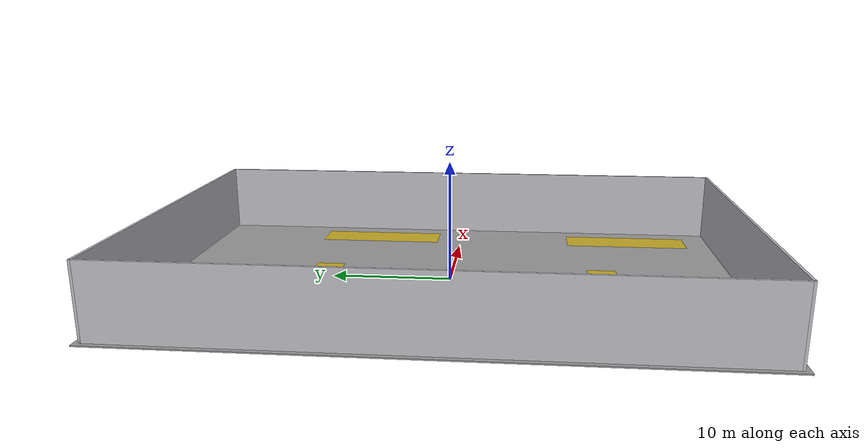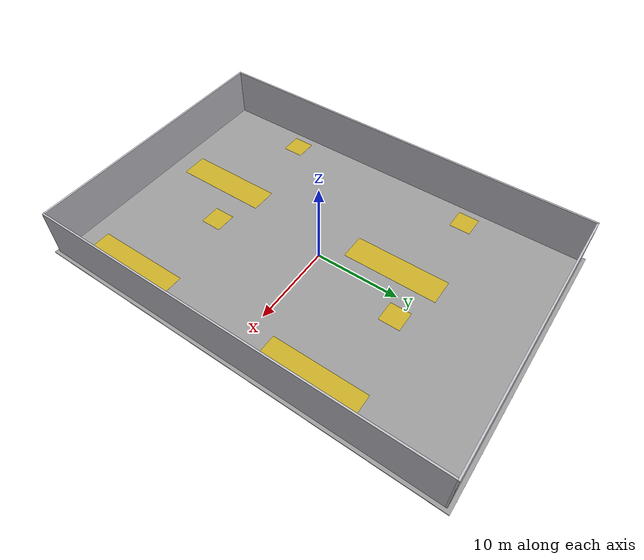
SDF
<sdf version="1.6">
 <world name="default">
  <gravity>0 0 -9.8</gravity>
  <physics default="0" name="default_physics" type="ode">
   <max_step_size>0.01</max_step_size>
   <real_time_factor>1</real_time_factor>
   <real_time_update_rate>100</real_time_update_rate>
  </physics>
  <model name="warehouse_double_ground">
   <static>true</static>
   <link name="ground_link">
    <collision name="ground_collision">
     <geometry><box><size>33 49 0.1</size></box></geometry>
     <surface><friction><ode><mu>0.8</mu><mu2>0.8</mu2></ode></friction></surface>
    </collision>
    <visual name="ground_visual">
     <geometry><box><size>33 49 0.1</size></box></geometry>
     <material><ambient>0.5 0.5 0.5 1</ambient><diffuse>0.6 0.6 0.6 1</diffuse></material>
    </visual>
    <pose>0 0 -0.05 0 0 0</pose>
   </link>
  </model>
  <model name="warehouse_double_wall_south">
   <static>true</static>
   <link name="wall_link">
    <collision name="c"><geometry><box><size>32.2 0.2 6</size></box></geometry></collision>
    <visual name="v">
     <geometry><box><size>32.2 0.2 6</size></box></geometry>
     <material><ambient>0.7 0.7 0.72 1</ambient><diffuse>0.75 0.75 0.78 1</diffuse></material>
    </visual>
   </link>
   <pose>0 -24 3 0 0 0</pose>
  </model>
  <model name="warehouse_double_wall_north">
   <static>true</static>
   <link name="wall_link">
    <collision name="c"><geometry><box><size>32.2 0.2 6</size></box></geometry></collision>
    <visual name="v">
     <geometry><box><size>32.2 0.2 6</size></box></geometry>
     <material><ambient>0.7 0.7 0.72 1</ambient><diffuse>0.75 0.75 0.78 1</diffuse></material>
    </visual>
   </link>
   <pose>0 24 3 0 0 0</pose>
  </model>
  <model name="warehouse_double_wall_west">
   <static>true</static>
   <link name="wall_link">
    <collision name="c"><geometry><box><size>0.2 48.2 6</size></box></geometry></collision>
    <visual name="v">
     <geometry><box><size>0.2 48.2 6</size></box></geometry>
     <material><ambient>0.7 0.7 0.72 1</ambient><diffuse>0.75 0.75 0.78 1</diffuse></material>
    </visual>
   </link>
   <pose>-16 0 3 0 0 0</pose>
  </model>
  <model name="warehouse_double_wall_east">
   <static>true</static>
   <link name="wall_link">
    <collision name="c"><geometry><box><size>0.2 48.2 6</size></box></geometry></collision>
    <visual name="v">
     <geometry><box><size>0.2 48.2 6</size></box></geometry>
     <material><ambient>0.7 0.7 0.72 1</ambient><diffuse>0.75 0.75 0.78 1</diffuse></material>
    </visual>
   </link>
   <pose>16 0 3 0 0 0</pose>
  </model>
  <model name="keepout_zone_shelfF_Q1">
   <static>true</static>
   <link name="l">
    <visual name="v">
     <geometry><box><size>2.5 2.5 0.02</size></box></geometry>
     <material><ambient>0.9 0.75 0 0.7</ambient><diffuse>0.9 0.75 0 0.7</diffuse></material>
    </visual>
   </link>
   <pose>-13.795143 -12.956635 0.01 0 0 0</pose>
  </model>
  <model name="keepout_zone_shelfF_Q2">
   <static>true</static>
   <link name="l">
    <visual name="v">
     <geometry><box><size>2.5 2.5 0.02</size></box></geometry>
     <material><ambient>0.9 0.75 0 0.7</ambient><diffuse>0.9 0.75 0 0.7</diffuse></material>
    </visual>
   </link>
   <pose>-13.795143 11.043365 0.01 0 0 0</pose>
  </model>
  <model name="keepout_zone_shelfF_Q3">
   <static>true</static>
   <link name="l">
    <visual name="v">
     <geometry><box><size>2.5 2.5 0.02</size></box></geometry>
     <material><ambient>0.9 0.75 0 0.7</ambient><diffuse>0.9 0.75 0 0.7</diffuse></material>
    </visual>
   </link>
   <pose>2.204857 -12.956635 0.01 0 0 0</pose>
  </model>
  <model name="keepout_zone_shelfF_Q4">
   <static>true</static>
   <link name="l">
    <visual name="v">
     <geometry><box><size>2.5 2.5 0.02</size></box></geometry>
     <material><ambient>0.9 0.75 0 0.7</ambient><diffuse>0.9 0.75 0 0.7</diffuse></material>
    </visual>
   </link>
   <pose>2.204857 11.043365 0.01 0 0 0</pose>
  </model>
  <model name="keepout_zone_shelfED_Q1">
   <static>true</static>
   <link name="l">
    <visual name="v">
     <geometry><box><size>3.1 11.3 0.02</size></box></geometry>
     <material><ambient>0.9 0.75 0 0.7</ambient><diffuse>0.9 0.75 0 0.7</diffuse></material>
    </visual>
   </link>
   <pose>-3.25 -16.05 0.01 0 0 0</pose>
  </model>
  <model name="keepout_zone_shelfED_Q2">
   <static>true</static>
   <link name="l">
    <visual name="v">
     <geometry><box><size>3.1 11.3 0.02</size></box></geometry>
     <material><ambient>0.9 0.75 0 0.7</ambient><diffuse>0.9 0.75 0 0.7</diffuse></material>
    </visual>
   </link>
   <pose>-3.25 7.95 0.01 0 0 0</pose>
  </model>
  <model name="keepout_zone_shelfED_Q3">
   <static>true</static>
   <link name="l">
    <visual name="v">
     <geometry><box><size>3.1 11.3 0.02</size></box></geometry>
     <material><ambient>0.9 0.75 0 0.7</ambient><diffuse>0.9 0.75 0 0.7</diffuse></material>
    </visual>
   </link>
   <pose>12.75 -16.05 0.01 0 0 0</pose>
  </model>
  <model name="keepout_zone_shelfED_Q4">
   <static>true</static>
   <link name="l">
    <visual name="v">
     <geometry><box><size>3.1 11.3 0.02</size></box></geometry>
     <material><ambient>0.9 0.75 0 0.7</ambient><diffuse>0.9 0.75 0 0.7</diffuse></material>
    </visual>
   </link>
   <pose>12.75 7.95 0.01 0 0 0</pose>
  </model>
  <light name="Warehouse_CeilingLight_Q1" type="point">
   <pose>-8 -12 5.8 0 0 0</pose>
   <diffuse>0.5 0.5 0.5 1</diffuse>
   <specular>0.2 0.2 0.2 1</specular>
   <attenuation>
    <range>80</range>
    <constant>0.3</constant>
    <linear>0.01</linear>
    <quadratic>0.001</quadratic>
   </attenuation>
   <direction>0.1 0.1 -1</direction>
  </light>
  <light name="Warehouse_CeilingLight_Q2" type="point">
   <pose>-8 12 5.8 0 0 0</pose>
   <diffuse>0.5 0.5 0.5 1</diffuse>
   <specular>0.2 0.2 0.2 1</specular>
   <attenuation>
    <range>80</range>
    <constant>0.3</constant>
    <linear>0.01</linear>
    <quadratic>0.001</quadratic>
   </attenuation>
   <direction>0.1 0.1 -1</direction>
  </light>
  <light name="Warehouse_CeilingLight_Q3" type="point">
   <pose>8 -12 5.8 0 0 0</pose>
   <diffuse>0.5 0.5 0.5 1</diffuse>
   <specular>0.2 0.2 0.2 1</specular>
   <attenuation>
    <range>80</range>
    <constant>0.3</constant>
    <linear>0.01</linear>
    <quadratic>0.001</quadratic>
   </attenuation>
   <direction>0.1 0.1 -1</direction>
  </light>
  <light name="Warehouse_CeilingLight_Q4" type="point">
   <pose>8 12 5.8 0 0 0</pose>
   <diffuse>0.5 0.5 0.5 1</diffuse>
   <specular>0.2 0.2 0.2 1</specular>
   <attenuation>
    <range>80</range>
    <constant>0.3</constant>
    <linear>0.01</linear>
    <quadratic>0.001</quadratic>
   </attenuation>
   <direction>0.1 0.1 -1</direction>
  </light>
 </world>
</sdf>
